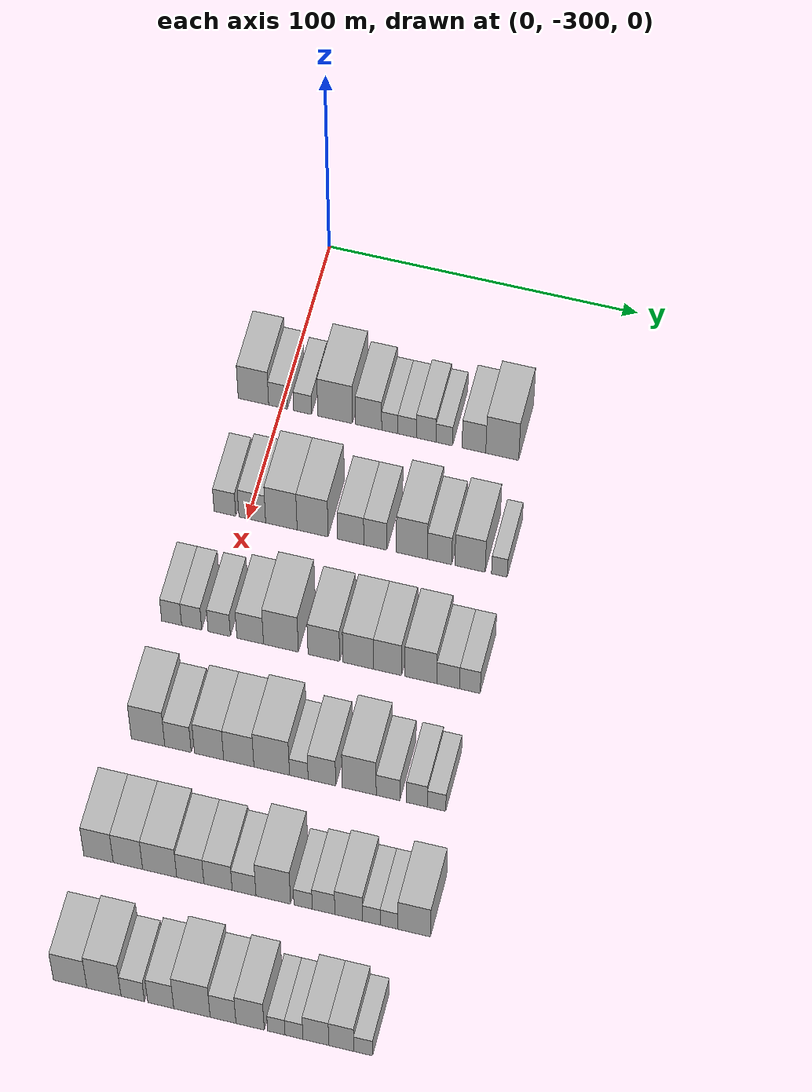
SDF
<sdf version="1.6">
 <world name="default">
  <model name="building_33">
   <static>1</static>
   <pose>50.0000 -309.0129 0 0.000000 0.000000 0.000000</pose>
   <link name="link">
    <pose>0 0 10.50 0 0 0</pose>
    <collision name="collision"><geometry><box><size>20.0000 9.7960 21.0000</size></box></geometry></collision>
    <visual name="visual">
     <cast_shadows>0</cast_shadows>
     <geometry><box><size>20.0000 9.7960 21.0000</size></box></geometry>
     <material>
      <script>
       <uri>model://HANNAS_wall/materials/scripts</uri>
       <uri>model://HANNAS_wall/materials/textures</uri>
       <name>vrc/HANNAS_wall</name>
      </script>
     </material>
    </visual>
   </link>
  </model>
  <model name="building_34">
   <static>1</static>
   <pose>50.0000 -301.0867 0 0.000000 0.000000 0.000000</pose>
   <link name="link">
    <pose>0 0 7.50 0 0 0</pose>
    <collision name="collision"><geometry><box><size>20.0000 6.0563 15.0000</size></box></geometry></collision>
    <visual name="visual">
     <cast_shadows>0</cast_shadows>
     <geometry><box><size>20.0000 6.0563 15.0000</size></box></geometry>
     <material>
      <script>
       <uri>model://HANNAS_wall/materials/scripts</uri>
       <uri>model://HANNAS_wall/materials/textures</uri>
       <name>vrc/HANNAS_wall</name>
      </script>
     </material>
    </visual>
   </link>
  </model>
  <model name="building_35">
   <static>1</static>
   <pose>50.0000 -293.1780 0 0.000000 0.000000 0.000000</pose>
   <link name="link">
    <pose>0 0 6.00 0 0 0</pose>
    <collision name="collision"><geometry><box><size>20.0000 5.7611 12.0000</size></box></geometry></collision>
    <visual name="visual">
     <cast_shadows>0</cast_shadows>
     <geometry><box><size>20.0000 5.7611 12.0000</size></box></geometry>
     <material>
      <script>
       <uri>model://HANNAS_wall/materials/scripts</uri>
       <uri>model://HANNAS_wall/materials/textures</uri>
       <name>vrc/HANNAS_wall</name>
      </script>
     </material>
    </visual>
   </link>
  </model>
  <model name="building_36">
   <static>1</static>
   <pose>50.0000 -282.7511 0 0.000000 0.000000 0.000000</pose>
   <link name="link">
    <pose>0 0 12.00 0 0 0</pose>
    <collision name="collision"><geometry><box><size>20.0000 11.0928 24.0000</size></box></geometry></collision>
    <visual name="visual">
     <cast_shadows>0</cast_shadows>
     <geometry><box><size>20.0000 11.0928 24.0000</size></box></geometry>
     <material>
      <script>
       <uri>model://HANNAS_wall/materials/scripts</uri>
       <uri>model://HANNAS_wall/materials/textures</uri>
       <name>vrc/HANNAS_wall</name>
      </script>
     </material>
    </visual>
   </link>
  </model>
  <model name="building_37">
   <static>1</static>
   <pose>50.0000 -272.0210 0 0.000000 0.000000 0.000000</pose>
   <link name="link">
    <pose>0 0 9.00 0 0 0</pose>
    <collision name="collision"><geometry><box><size>20.0000 8.3673 18.0000</size></box></geometry></collision>
    <visual name="visual">
     <cast_shadows>0</cast_shadows>
     <geometry><box><size>20.0000 8.3673 18.0000</size></box></geometry>
     <material>
      <script>
       <uri>model://HANNAS_wall/materials/scripts</uri>
       <uri>model://HANNAS_wall/materials/textures</uri>
       <name>vrc/HANNAS_wall</name>
      </script>
     </material>
    </visual>
   </link>
  </model>
  <model name="building_38">
   <static>1</static>
   <pose>50.0000 -265.2547 0 0.000000 0.000000 0.000000</pose>
   <link name="link">
    <pose>0 0 6.00 0 0 0</pose>
    <collision name="collision"><geometry><box><size>20.0000 5.1654 12.0000</size></box></geometry></collision>
    <visual name="visual">
     <cast_shadows>0</cast_shadows>
     <geometry><box><size>20.0000 5.1654 12.0000</size></box></geometry>
     <material>
      <script>
       <uri>model://HANNAS_wall/materials/scripts</uri>
       <uri>model://HANNAS_wall/materials/textures</uri>
       <name>vrc/HANNAS_wall</name>
      </script>
     </material>
    </visual>
   </link>
  </model>
  <model name="building_39">
   <static>1</static>
   <pose>50.0000 -259.7088 0 0.000000 0.000000 0.000000</pose>
   <link name="link">
    <pose>0 0 6.00 0 0 0</pose>
    <collision name="collision"><geometry><box><size>20.0000 5.9265 12.0000</size></box></geometry></collision>
    <visual name="visual">
     <cast_shadows>0</cast_shadows>
     <geometry><box><size>20.0000 5.9265 12.0000</size></box></geometry>
     <material>
      <script>
       <uri>model://HANNAS_wall/materials/scripts</uri>
       <uri>model://HANNAS_wall/materials/textures</uri>
       <name>vrc/HANNAS_wall</name>
      </script>
     </material>
    </visual>
   </link>
  </model>
  <model name="building_40">
   <static>1</static>
   <pose>50.0000 -253.6281 0 0.000000 0.000000 0.000000</pose>
   <link name="link">
    <pose>0 0 7.50 0 0 0</pose>
    <collision name="collision"><geometry><box><size>20.0000 6.2348 15.0000</size></box></geometry></collision>
    <visual name="visual">
     <cast_shadows>0</cast_shadows>
     <geometry><box><size>20.0000 6.2348 15.0000</size></box></geometry>
     <material>
      <script>
       <uri>model://HANNAS_wall/materials/scripts</uri>
       <uri>model://HANNAS_wall/materials/textures</uri>
       <name>vrc/HANNAS_wall</name>
      </script>
     </material>
    </visual>
   </link>
  </model>
  <model name="building_41">
   <static>1</static>
   <pose>50.0000 -247.8397 0 0.000000 0.000000 0.000000</pose>
   <link name="link">
    <pose>0 0 6.00 0 0 0</pose>
    <collision name="collision"><geometry><box><size>20.0000 5.3420 12.0000</size></box></geometry></collision>
    <visual name="visual">
     <cast_shadows>0</cast_shadows>
     <geometry><box><size>20.0000 5.3420 12.0000</size></box></geometry>
     <material>
      <script>
       <uri>model://HANNAS_wall/materials/scripts</uri>
       <uri>model://HANNAS_wall/materials/textures</uri>
       <name>vrc/HANNAS_wall</name>
      </script>
     </material>
    </visual>
   </link>
  </model>
  <model name="building_42">
   <static>1</static>
   <pose>50.0000 -238.3857 0 0.000000 0.000000 0.000000</pose>
   <link name="link">
    <pose>0 0 9.00 0 0 0</pose>
    <collision name="collision"><geometry><box><size>20.0000 7.5660 18.0000</size></box></geometry></collision>
    <visual name="visual">
     <cast_shadows>0</cast_shadows>
     <geometry><box><size>20.0000 7.5660 18.0000</size></box></geometry>
     <material>
      <script>
       <uri>model://HANNAS_wall/materials/scripts</uri>
       <uri>model://HANNAS_wall/materials/textures</uri>
       <name>vrc/HANNAS_wall</name>
      </script>
     </material>
    </visual>
   </link>
  </model>
  <model name="building_43">
   <static>1</static>
   <pose>50.0000 -229.3706 0 0.000000 0.000000 0.000000</pose>
   <link name="link">
    <pose>0 0 12.00 0 0 0</pose>
    <collision name="collision"><geometry><box><size>20.0000 10.4642 24.0000</size></box></geometry></collision>
    <visual name="visual">
     <cast_shadows>0</cast_shadows>
     <geometry><box><size>20.0000 10.4642 24.0000</size></box></geometry>
     <material>
      <script>
       <uri>model://HANNAS_wall/materials/scripts</uri>
       <uri>model://HANNAS_wall/materials/textures</uri>
       <name>vrc/HANNAS_wall</name>
      </script>
     </material>
    </visual>
   </link>
  </model>
  <model name="building_166">
   <static>1</static>
   <pose>90.0000 -307.4563 0 0.000000 0.000000 0.000000</pose>
   <link name="link">
    <pose>0 0 7.50 0 0 0</pose>
    <collision name="collision"><geometry><box><size>20.0000 6.8981 15.0000</size></box></geometry></collision>
    <visual name="visual">
     <cast_shadows>0</cast_shadows>
     <geometry><box><size>20.0000 6.8981 15.0000</size></box></geometry>
     <material>
      <script>
       <uri>model://HANNAS_wall/materials/scripts</uri>
       <uri>model://HANNAS_wall/materials/textures</uri>
       <name>vrc/HANNAS_wall</name>
      </script>
     </material>
    </visual>
   </link>
  </model>
  <model name="building_167">
   <static>1</static>
   <pose>90.0000 -298.7523 0 0.000000 0.000000 0.000000</pose>
   <link name="link">
    <pose>0 0 9.00 0 0 0</pose>
    <collision name="collision"><geometry><box><size>20.0000 8.5100 18.0000</size></box></geometry></collision>
    <visual name="visual">
     <cast_shadows>0</cast_shadows>
     <geometry><box><size>20.0000 8.5100 18.0000</size></box></geometry>
     <material>
      <script>
       <uri>model://HANNAS_wall/materials/scripts</uri>
       <uri>model://HANNAS_wall/materials/textures</uri>
       <name>vrc/HANNAS_wall</name>
      </script>
     </material>
    </visual>
   </link>
  </model>
  <model name="building_168">
   <static>1</static>
   <pose>90.0000 -289.4993 0 0.000000 0.000000 0.000000</pose>
   <link name="link">
    <pose>0 0 12.00 0 0 0</pose>
    <collision name="collision"><geometry><box><size>20.0000 9.9960 24.0000</size></box></geometry></collision>
    <visual name="visual">
     <cast_shadows>0</cast_shadows>
     <geometry><box><size>20.0000 9.9960 24.0000</size></box></geometry>
     <material>
      <script>
       <uri>model://HANNAS_wall/materials/scripts</uri>
       <uri>model://HANNAS_wall/materials/textures</uri>
       <name>vrc/HANNAS_wall</name>
      </script>
     </material>
    </visual>
   </link>
  </model>
  <model name="building_169">
   <static>1</static>
   <pose>90.0000 -279.5873 0 0.000000 0.000000 0.000000</pose>
   <link name="link">
    <pose>0 0 12.00 0 0 0</pose>
    <collision name="collision"><geometry><box><size>20.0000 9.8280 24.0000</size></box></geometry></collision>
    <visual name="visual">
     <cast_shadows>0</cast_shadows>
     <geometry><box><size>20.0000 9.8280 24.0000</size></box></geometry>
     <material>
      <script>
       <uri>model://HANNAS_wall/materials/scripts</uri>
       <uri>model://HANNAS_wall/materials/textures</uri>
       <name>vrc/HANNAS_wall</name>
      </script>
     </material>
    </visual>
   </link>
  </model>
  <model name="building_170">
   <static>1</static>
   <pose>90.0000 -267.5378 0 0.000000 0.000000 0.000000</pose>
   <link name="link">
    <pose>0 0 9.00 0 0 0</pose>
    <collision name="collision"><geometry><box><size>20.0000 8.2711 18.0000</size></box></geometry></collision>
    <visual name="visual">
     <cast_shadows>0</cast_shadows>
     <geometry><box><size>20.0000 8.2711 18.0000</size></box></geometry>
     <material>
      <script>
       <uri>model://HANNAS_wall/materials/scripts</uri>
       <uri>model://HANNAS_wall/materials/textures</uri>
       <name>vrc/HANNAS_wall</name>
      </script>
     </material>
    </visual>
   </link>
  </model>
  <model name="building_171">
   <static>1</static>
   <pose>90.0000 -259.7451 0 0.000000 0.000000 0.000000</pose>
   <link name="link">
    <pose>0 0 9.00 0 0 0</pose>
    <collision name="collision"><geometry><box><size>20.0000 7.3143 18.0000</size></box></geometry></collision>
    <visual name="visual">
     <cast_shadows>0</cast_shadows>
     <geometry><box><size>20.0000 7.3143 18.0000</size></box></geometry>
     <material>
      <script>
       <uri>model://HANNAS_wall/materials/scripts</uri>
       <uri>model://HANNAS_wall/materials/textures</uri>
       <name>vrc/HANNAS_wall</name>
      </script>
     </material>
    </visual>
   </link>
  </model>
  <model name="building_172">
   <static>1</static>
   <pose>90.0000 -248.2049 0 0.000000 0.000000 0.000000</pose>
   <link name="link">
    <pose>0 0 12.00 0 0 0</pose>
    <collision name="collision"><geometry><box><size>20.0000 9.7661 24.0000</size></box></geometry></collision>
    <visual name="visual">
     <cast_shadows>0</cast_shadows>
     <geometry><box><size>20.0000 9.7661 24.0000</size></box></geometry>
     <material>
      <script>
       <uri>model://HANNAS_wall/materials/scripts</uri>
       <uri>model://HANNAS_wall/materials/textures</uri>
       <name>vrc/HANNAS_wall</name>
      </script>
     </material>
    </visual>
   </link>
  </model>
  <model name="building_173">
   <static>1</static>
   <pose>90.0000 -239.5015 0 0.000000 0.000000 0.000000</pose>
   <link name="link">
    <pose>0 0 9.00 0 0 0</pose>
    <collision name="collision"><geometry><box><size>20.0000 7.6409 18.0000</size></box></geometry></collision>
    <visual name="visual">
     <cast_shadows>0</cast_shadows>
     <geometry><box><size>20.0000 7.6409 18.0000</size></box></geometry>
     <material>
      <script>
       <uri>model://HANNAS_wall/materials/scripts</uri>
       <uri>model://HANNAS_wall/materials/textures</uri>
       <name>vrc/HANNAS_wall</name>
      </script>
     </material>
    </visual>
   </link>
  </model>
  <model name="building_174">
   <static>1</static>
   <pose>90.0000 -229.9173 0 0.000000 0.000000 0.000000</pose>
   <link name="link">
    <pose>0 0 10.50 0 0 0</pose>
    <collision name="collision"><geometry><box><size>20.0000 9.5275 21.0000</size></box></geometry></collision>
    <visual name="visual">
     <cast_shadows>0</cast_shadows>
     <geometry><box><size>20.0000 9.5275 21.0000</size></box></geometry>
     <material>
      <script>
       <uri>model://HANNAS_wall/materials/scripts</uri>
       <uri>model://HANNAS_wall/materials/textures</uri>
       <name>vrc/HANNAS_wall</name>
      </script>
     </material>
    </visual>
   </link>
  </model>
  <model name="building_175">
   <static>1</static>
   <pose>90.0000 -220.6853 0 0.000000 0.000000 0.000000</pose>
   <link name="link">
    <pose>0 0 6.00 0 0 0</pose>
    <collision name="collision"><geometry><box><size>20.0000 4.9364 12.0000</size></box></geometry></collision>
    <visual name="visual">
     <cast_shadows>0</cast_shadows>
     <geometry><box><size>20.0000 4.9364 12.0000</size></box></geometry>
     <material>
      <script>
       <uri>model://HANNAS_wall/materials/scripts</uri>
       <uri>model://HANNAS_wall/materials/textures</uri>
       <name>vrc/HANNAS_wall</name>
      </script>
     </material>
    </visual>
   </link>
  </model>
  <model name="building_303">
   <static>1</static>
   <pose>130.0000 -313.4658 0 0.000000 0.000000 0.000000</pose>
   <link name="link">
    <pose>0 0 7.50 0 0 0</pose>
    <collision name="collision"><geometry><box><size>20.0000 6.2814 15.0000</size></box></geometry></collision>
    <visual name="visual">
     <cast_shadows>0</cast_shadows>
     <geometry><box><size>20.0000 6.2814 15.0000</size></box></geometry>
     <material>
      <script>
       <uri>model://HANNAS_wall/materials/scripts</uri>
       <uri>model://HANNAS_wall/materials/textures</uri>
       <name>vrc/HANNAS_wall</name>
      </script>
     </material>
    </visual>
   </link>
  </model>
  <model name="building_304">
   <static>1</static>
   <pose>130.0000 -307.1606 0 0.000000 0.000000 0.000000</pose>
   <link name="link">
    <pose>0 0 7.50 0 0 0</pose>
    <collision name="collision"><geometry><box><size>20.0000 6.3290 15.0000</size></box></geometry></collision>
    <visual name="visual">
     <cast_shadows>0</cast_shadows>
     <geometry><box><size>20.0000 6.3290 15.0000</size></box></geometry>
     <material>
      <script>
       <uri>model://HANNAS_wall/materials/scripts</uri>
       <uri>model://HANNAS_wall/materials/textures</uri>
       <name>vrc/HANNAS_wall</name>
      </script>
     </material>
    </visual>
   </link>
  </model>
  <model name="building_305">
   <static>1</static>
   <pose>130.0000 -298.4870 0 0.000000 0.000000 0.000000</pose>
   <link name="link">
    <pose>0 0 7.50 0 0 0</pose>
    <collision name="collision"><geometry><box><size>20.0000 7.0181 15.0000</size></box></geometry></collision>
    <visual name="visual">
     <cast_shadows>0</cast_shadows>
     <geometry><box><size>20.0000 7.0181 15.0000</size></box></geometry>
     <material>
      <script>
       <uri>model://HANNAS_wall/materials/scripts</uri>
       <uri>model://HANNAS_wall/materials/textures</uri>
       <name>vrc/HANNAS_wall</name>
      </script>
     </material>
    </visual>
   </link>
  </model>
  <model name="building_306">
   <static>1</static>
   <pose>130.0000 -288.7912 0 0.000000 0.000000 0.000000</pose>
   <link name="link">
    <pose>0 0 9.00 0 0 0</pose>
    <collision name="collision"><geometry><box><size>20.0000 8.3737 18.0000</size></box></geometry></collision>
    <visual name="visual">
     <cast_shadows>0</cast_shadows>
     <geometry><box><size>20.0000 8.3737 18.0000</size></box></geometry>
     <material>
      <script>
       <uri>model://HANNAS_wall/materials/scripts</uri>
       <uri>model://HANNAS_wall/materials/textures</uri>
       <name>vrc/HANNAS_wall</name>
      </script>
     </material>
    </visual>
   </link>
  </model>
  <model name="building_307">
   <static>1</static>
   <pose>130.0000 -279.1312 0 0.000000 0.000000 0.000000</pose>
   <link name="link">
    <pose>0 0 12.00 0 0 0</pose>
    <collision name="collision"><geometry><box><size>20.0000 10.9462 24.0000</size></box></geometry></collision>
    <visual name="visual">
     <cast_shadows>0</cast_shadows>
     <geometry><box><size>20.0000 10.9462 24.0000</size></box></geometry>
     <material>
      <script>
       <uri>model://HANNAS_wall/materials/scripts</uri>
       <uri>model://HANNAS_wall/materials/textures</uri>
       <name>vrc/HANNAS_wall</name>
      </script>
     </material>
    </visual>
   </link>
  </model>
  <model name="building_308">
   <static>1</static>
   <pose>130.0000 -265.7043 0 0.000000 0.000000 0.000000</pose>
   <link name="link">
    <pose>0 0 10.50 0 0 0</pose>
    <collision name="collision"><geometry><box><size>20.0000 9.9078 21.0000</size></box></geometry></collision>
    <visual name="visual">
     <cast_shadows>0</cast_shadows>
     <geometry><box><size>20.0000 9.9078 21.0000</size></box></geometry>
     <material>
      <script>
       <uri>model://HANNAS_wall/materials/scripts</uri>
       <uri>model://HANNAS_wall/materials/textures</uri>
       <name>vrc/HANNAS_wall</name>
      </script>
     </material>
    </visual>
   </link>
  </model>
  <model name="building_309">
   <static>1</static>
   <pose>130.0000 -254.9698 0 0.000000 0.000000 0.000000</pose>
   <link name="link">
    <pose>0 0 10.50 0 0 0</pose>
    <collision name="collision"><geometry><box><size>20.0000 9.5611 21.0000</size></box></geometry></collision>
    <visual name="visual">
     <cast_shadows>0</cast_shadows>
     <geometry><box><size>20.0000 9.5611 21.0000</size></box></geometry>
     <material>
      <script>
       <uri>model://HANNAS_wall/materials/scripts</uri>
       <uri>model://HANNAS_wall/materials/textures</uri>
       <name>vrc/HANNAS_wall</name>
      </script>
     </material>
    </visual>
   </link>
  </model>
  <model name="building_310">
   <static>1</static>
   <pose>130.0000 -245.8328 0 0.000000 0.000000 0.000000</pose>
   <link name="link">
    <pose>0 0 10.50 0 0 0</pose>
    <collision name="collision"><geometry><box><size>20.0000 8.7129 21.0000</size></box></geometry></collision>
    <visual name="visual">
     <cast_shadows>0</cast_shadows>
     <geometry><box><size>20.0000 8.7129 21.0000</size></box></geometry>
     <material>
      <script>
       <uri>model://HANNAS_wall/materials/scripts</uri>
       <uri>model://HANNAS_wall/materials/textures</uri>
       <name>vrc/HANNAS_wall</name>
      </script>
     </material>
    </visual>
   </link>
  </model>
  <model name="building_311">
   <static>1</static>
   <pose>130.0000 -235.5105 0 0.000000 0.000000 0.000000</pose>
   <link name="link">
    <pose>0 0 10.50 0 0 0</pose>
    <collision name="collision"><geometry><box><size>20.0000 9.9317 21.0000</size></box></geometry></collision>
    <visual name="visual">
     <cast_shadows>0</cast_shadows>
     <geometry><box><size>20.0000 9.9317 21.0000</size></box></geometry>
     <material>
      <script>
       <uri>model://HANNAS_wall/materials/scripts</uri>
       <uri>model://HANNAS_wall/materials/textures</uri>
       <name>vrc/HANNAS_wall</name>
      </script>
     </material>
    </visual>
   </link>
  </model>
  <model name="building_312">
   <static>1</static>
   <pose>130.0000 -227.0119 0 0.000000 0.000000 0.000000</pose>
   <link name="link">
    <pose>0 0 7.50 0 0 0</pose>
    <collision name="collision"><geometry><box><size>20.0000 7.0656 15.0000</size></box></geometry></collision>
    <visual name="visual">
     <cast_shadows>0</cast_shadows>
     <geometry><box><size>20.0000 7.0656 15.0000</size></box></geometry>
     <material>
      <script>
       <uri>model://HANNAS_wall/materials/scripts</uri>
       <uri>model://HANNAS_wall/materials/textures</uri>
       <name>vrc/HANNAS_wall</name>
      </script>
     </material>
    </visual>
   </link>
  </model>
  <model name="building_313">
   <static>1</static>
   <pose>130.0000 -220.2632 0 0.000000 0.000000 0.000000</pose>
   <link name="link">
    <pose>0 0 7.50 0 0 0</pose>
    <collision name="collision"><geometry><box><size>20.0000 6.4317 15.0000</size></box></geometry></collision>
    <visual name="visual">
     <cast_shadows>0</cast_shadows>
     <geometry><box><size>20.0000 6.4317 15.0000</size></box></geometry>
     <material>
      <script>
       <uri>model://HANNAS_wall/materials/scripts</uri>
       <uri>model://HANNAS_wall/materials/textures</uri>
       <name>vrc/HANNAS_wall</name>
      </script>
     </material>
    </visual>
   </link>
  </model>
  <model name="building_440">
   <static>1</static>
   <pose>170.0000 -309.8108 0 0.000000 0.000000 0.000000</pose>
   <link name="link">
    <pose>0 0 12.00 0 0 0</pose>
    <collision name="collision"><geometry><box><size>20.0000 10.4137 24.0000</size></box></geometry></collision>
    <visual name="visual">
     <cast_shadows>0</cast_shadows>
     <geometry><box><size>20.0000 10.4137 24.0000</size></box></geometry>
     <material>
      <script>
       <uri>model://HANNAS_wall/materials/scripts</uri>
       <uri>model://HANNAS_wall/materials/textures</uri>
       <name>vrc/HANNAS_wall</name>
      </script>
     </material>
    </visual>
   </link>
  </model>
  <model name="building_441">
   <static>1</static>
   <pose>170.0000 -300.5060 0 0.000000 0.000000 0.000000</pose>
   <link name="link">
    <pose>0 0 9.00 0 0 0</pose>
    <collision name="collision"><geometry><box><size>20.0000 8.1960 18.0000</size></box></geometry></collision>
    <visual name="visual">
     <cast_shadows>0</cast_shadows>
     <geometry><box><size>20.0000 8.1960 18.0000</size></box></geometry>
     <material>
      <script>
       <uri>model://HANNAS_wall/materials/scripts</uri>
       <uri>model://HANNAS_wall/materials/textures</uri>
       <name>vrc/HANNAS_wall</name>
      </script>
     </material>
    </visual>
   </link>
  </model>
  <model name="building_442">
   <static>1</static>
   <pose>170.0000 -290.8806 0 0.000000 0.000000 0.000000</pose>
   <link name="link">
    <pose>0 0 10.50 0 0 0</pose>
    <collision name="collision"><geometry><box><size>20.0000 9.0547 21.0000</size></box></geometry></collision>
    <visual name="visual">
     <cast_shadows>0</cast_shadows>
     <geometry><box><size>20.0000 9.0547 21.0000</size></box></geometry>
     <material>
      <script>
       <uri>model://HANNAS_wall/materials/scripts</uri>
       <uri>model://HANNAS_wall/materials/textures</uri>
       <name>vrc/HANNAS_wall</name>
      </script>
     </material>
    </visual>
   </link>
  </model>
  <model name="building_443">
   <static>1</static>
   <pose>170.0000 -281.6627 0 0.000000 0.000000 0.000000</pose>
   <link name="link">
    <pose>0 0 10.50 0 0 0</pose>
    <collision name="collision"><geometry><box><size>20.0000 9.3812 21.0000</size></box></geometry></collision>
    <visual name="visual">
     <cast_shadows>0</cast_shadows>
     <geometry><box><size>20.0000 9.3812 21.0000</size></box></geometry>
     <material>
      <script>
       <uri>model://HANNAS_wall/materials/scripts</uri>
       <uri>model://HANNAS_wall/materials/textures</uri>
       <name>vrc/HANNAS_wall</name>
      </script>
     </material>
    </visual>
   </link>
  </model>
  <model name="building_444">
   <static>1</static>
   <pose>170.0000 -271.4679 0 0.000000 0.000000 0.000000</pose>
   <link name="link">
    <pose>0 0 12.00 0 0 0</pose>
    <collision name="collision"><geometry><box><size>20.0000 11.0085 24.0000</size></box></geometry></collision>
    <visual name="visual">
     <cast_shadows>0</cast_shadows>
     <geometry><box><size>20.0000 11.0085 24.0000</size></box></geometry>
     <material>
      <script>
       <uri>model://HANNAS_wall/materials/scripts</uri>
       <uri>model://HANNAS_wall/materials/textures</uri>
       <name>vrc/HANNAS_wall</name>
      </script>
     </material>
    </visual>
   </link>
  </model>
  <model name="building_445">
   <static>1</static>
   <pose>170.0000 -263.1023 0 0.000000 0.000000 0.000000</pose>
   <link name="link">
    <pose>0 0 6.00 0 0 0</pose>
    <collision name="collision"><geometry><box><size>20.0000 5.7227 12.0000</size></box></geometry></collision>
    <visual name="visual">
     <cast_shadows>0</cast_shadows>
     <geometry><box><size>20.0000 5.7227 12.0000</size></box></geometry>
     <material>
      <script>
       <uri>model://HANNAS_wall/materials/scripts</uri>
       <uri>model://HANNAS_wall/materials/textures</uri>
       <name>vrc/HANNAS_wall</name>
      </script>
     </material>
    </visual>
   </link>
  </model>
  <model name="building_446">
   <static>1</static>
   <pose>170.0000 -255.9765 0 0.000000 0.000000 0.000000</pose>
   <link name="link">
    <pose>0 0 9.00 0 0 0</pose>
    <collision name="collision"><geometry><box><size>20.0000 8.5289 18.0000</size></box></geometry></collision>
    <visual name="visual">
     <cast_shadows>0</cast_shadows>
     <geometry><box><size>20.0000 8.5289 18.0000</size></box></geometry>
     <material>
      <script>
       <uri>model://HANNAS_wall/materials/scripts</uri>
       <uri>model://HANNAS_wall/materials/textures</uri>
       <name>vrc/HANNAS_wall</name>
      </script>
     </material>
    </visual>
   </link>
  </model>
  <model name="building_447">
   <static>1</static>
   <pose>170.0000 -244.4916 0 0.000000 0.000000 0.000000</pose>
   <link name="link">
    <pose>0 0 12.00 0 0 0</pose>
    <collision name="collision"><geometry><box><size>20.0000 10.4408 24.0000</size></box></geometry></collision>
    <visual name="visual">
     <cast_shadows>0</cast_shadows>
     <geometry><box><size>20.0000 10.4408 24.0000</size></box></geometry>
     <material>
      <script>
       <uri>model://HANNAS_wall/materials/scripts</uri>
       <uri>model://HANNAS_wall/materials/textures</uri>
       <name>vrc/HANNAS_wall</name>
      </script>
     </material>
    </visual>
   </link>
  </model>
  <model name="building_448">
   <static>1</static>
   <pose>170.0000 -235.6298 0 0.000000 0.000000 0.000000</pose>
   <link name="link">
    <pose>0 0 7.50 0 0 0</pose>
    <collision name="collision"><geometry><box><size>20.0000 7.2827 15.0000</size></box></geometry></collision>
    <visual name="visual">
     <cast_shadows>0</cast_shadows>
     <geometry><box><size>20.0000 7.2827 15.0000</size></box></geometry>
     <material>
      <script>
       <uri>model://HANNAS_wall/materials/scripts</uri>
       <uri>model://HANNAS_wall/materials/textures</uri>
       <name>vrc/HANNAS_wall</name>
      </script>
     </material>
    </visual>
   </link>
  </model>
  <model name="building_449">
   <static>1</static>
   <pose>170.0000 -226.7990 0 0.000000 0.000000 0.000000</pose>
   <link name="link">
    <pose>0 0 7.50 0 0 0</pose>
    <collision name="collision"><geometry><box><size>20.0000 6.3789 15.0000</size></box></geometry></collision>
    <visual name="visual">
     <cast_shadows>0</cast_shadows>
     <geometry><box><size>20.0000 6.3789 15.0000</size></box></geometry>
     <material>
      <script>
       <uri>model://HANNAS_wall/materials/scripts</uri>
       <uri>model://HANNAS_wall/materials/textures</uri>
       <name>vrc/HANNAS_wall</name>
      </script>
     </material>
    </visual>
   </link>
  </model>
  <model name="building_450">
   <static>1</static>
   <pose>170.0000 -220.7639 0 0.000000 0.000000 0.000000</pose>
   <link name="link">
    <pose>0 0 6.00 0 0 0</pose>
    <collision name="collision"><geometry><box><size>20.0000 5.6913 12.0000</size></box></geometry></collision>
    <visual name="visual">
     <cast_shadows>0</cast_shadows>
     <geometry><box><size>20.0000 5.6913 12.0000</size></box></geometry>
     <material>
      <script>
       <uri>model://HANNAS_wall/materials/scripts</uri>
       <uri>model://HANNAS_wall/materials/textures</uri>
       <name>vrc/HANNAS_wall</name>
      </script>
     </material>
    </visual>
   </link>
  </model>
  <model name="building_576">
   <static>1</static>
   <pose>210.0000 -313.9531 0 0.000000 0.000000 0.000000</pose>
   <link name="link">
    <pose>0 0 10.50 0 0 0</pose>
    <collision name="collision"><geometry><box><size>20.0000 9.0266 21.0000</size></box></geometry></collision>
    <visual name="visual">
     <cast_shadows>0</cast_shadows>
     <geometry><box><size>20.0000 9.0266 21.0000</size></box></geometry>
     <material>
      <script>
       <uri>model://HANNAS_wall/materials/scripts</uri>
       <uri>model://HANNAS_wall/materials/textures</uri>
       <name>vrc/HANNAS_wall</name>
      </script>
     </material>
    </visual>
   </link>
  </model>
  <model name="building_577">
   <static>1</static>
   <pose>210.0000 -304.9238 0 0.000000 0.000000 0.000000</pose>
   <link name="link">
    <pose>0 0 10.50 0 0 0</pose>
    <collision name="collision"><geometry><box><size>20.0000 9.0320 21.0000</size></box></geometry></collision>
    <visual name="visual">
     <cast_shadows>0</cast_shadows>
     <geometry><box><size>20.0000 9.0320 21.0000</size></box></geometry>
     <material>
      <script>
       <uri>model://HANNAS_wall/materials/scripts</uri>
       <uri>model://HANNAS_wall/materials/textures</uri>
       <name>vrc/HANNAS_wall</name>
      </script>
     </material>
    </visual>
   </link>
  </model>
  <model name="building_578">
   <static>1</static>
   <pose>210.0000 -295.1816 0 0.000000 0.000000 0.000000</pose>
   <link name="link">
    <pose>0 0 10.50 0 0 0</pose>
    <collision name="collision"><geometry><box><size>20.0000 10.4524 21.0000</size></box></geometry></collision>
    <visual name="visual">
     <cast_shadows>0</cast_shadows>
     <geometry><box><size>20.0000 10.4524 21.0000</size></box></geometry>
     <material>
      <script>
       <uri>model://HANNAS_wall/materials/scripts</uri>
       <uri>model://HANNAS_wall/materials/textures</uri>
       <name>vrc/HANNAS_wall</name>
      </script>
     </material>
    </visual>
   </link>
  </model>
  <model name="building_579">
   <static>1</static>
   <pose>210.0000 -285.7955 0 0.000000 0.000000 0.000000</pose>
   <link name="link">
    <pose>0 0 9.00 0 0 0</pose>
    <collision name="collision"><geometry><box><size>20.0000 8.3197 18.0000</size></box></geometry></collision>
    <visual name="visual">
     <cast_shadows>0</cast_shadows>
     <geometry><box><size>20.0000 8.3197 18.0000</size></box></geometry>
     <material>
      <script>
       <uri>model://HANNAS_wall/materials/scripts</uri>
       <uri>model://HANNAS_wall/materials/textures</uri>
       <name>vrc/HANNAS_wall</name>
      </script>
     </material>
    </visual>
   </link>
  </model>
  <model name="building_580">
   <static>1</static>
   <pose>210.0000 -277.3156 0 0.000000 0.000000 0.000000</pose>
   <link name="link">
    <pose>0 0 9.00 0 0 0</pose>
    <collision name="collision"><geometry><box><size>20.0000 8.6401 18.0000</size></box></geometry></collision>
    <visual name="visual">
     <cast_shadows>0</cast_shadows>
     <geometry><box><size>20.0000 8.6401 18.0000</size></box></geometry>
     <material>
      <script>
       <uri>model://HANNAS_wall/materials/scripts</uri>
       <uri>model://HANNAS_wall/materials/textures</uri>
       <name>vrc/HANNAS_wall</name>
      </script>
     </material>
    </visual>
   </link>
  </model>
  <model name="building_581">
   <static>1</static>
   <pose>210.0000 -269.3543 0 0.000000 0.000000 0.000000</pose>
   <link name="link">
    <pose>0 0 7.50 0 0 0</pose>
    <collision name="collision"><geometry><box><size>20.0000 7.2826 15.0000</size></box></geometry></collision>
    <visual name="visual">
     <cast_shadows>0</cast_shadows>
     <geometry><box><size>20.0000 7.2826 15.0000</size></box></geometry>
     <material>
      <script>
       <uri>model://HANNAS_wall/materials/scripts</uri>
       <uri>model://HANNAS_wall/materials/textures</uri>
       <name>vrc/HANNAS_wall</name>
      </script>
     </material>
    </visual>
   </link>
  </model>
  <model name="building_582">
   <static>1</static>
   <pose>210.0000 -260.4366 0 0.000000 0.000000 0.000000</pose>
   <link name="link">
    <pose>0 0 12.00 0 0 0</pose>
    <collision name="collision"><geometry><box><size>20.0000 10.5528 24.0000</size></box></geometry></collision>
    <visual name="visual">
     <cast_shadows>0</cast_shadows>
     <geometry><box><size>20.0000 10.5528 24.0000</size></box></geometry>
     <material>
      <script>
       <uri>model://HANNAS_wall/materials/scripts</uri>
       <uri>model://HANNAS_wall/materials/textures</uri>
       <name>vrc/HANNAS_wall</name>
      </script>
     </material>
    </visual>
   </link>
  </model>
  <model name="building_583">
   <static>1</static>
   <pose>210.0000 -251.3647 0 0.000000 0.000000 0.000000</pose>
   <link name="link">
    <pose>0 0 6.00 0 0 0</pose>
    <collision name="collision"><geometry><box><size>20.0000 5.5911 12.0000</size></box></geometry></collision>
    <visual name="visual">
     <cast_shadows>0</cast_shadows>
     <geometry><box><size>20.0000 5.5911 12.0000</size></box></geometry>
     <material>
      <script>
       <uri>model://HANNAS_wall/materials/scripts</uri>
       <uri>model://HANNAS_wall/materials/textures</uri>
       <name>vrc/HANNAS_wall</name>
      </script>
     </material>
    </visual>
   </link>
  </model>
  <model name="building_584">
   <static>1</static>
   <pose>210.0000 -245.1346 0 0.000000 0.000000 0.000000</pose>
   <link name="link">
    <pose>0 0 7.50 0 0 0</pose>
    <collision name="collision"><geometry><box><size>20.0000 6.8690 15.0000</size></box></geometry></collision>
    <visual name="visual">
     <cast_shadows>0</cast_shadows>
     <geometry><box><size>20.0000 6.8690 15.0000</size></box></geometry>
     <material>
      <script>
       <uri>model://HANNAS_wall/materials/scripts</uri>
       <uri>model://HANNAS_wall/materials/textures</uri>
       <name>vrc/HANNAS_wall</name>
      </script>
     </material>
    </visual>
   </link>
  </model>
  <model name="building_585">
   <static>1</static>
   <pose>210.0000 -237.4994 0 0.000000 0.000000 0.000000</pose>
   <link name="link">
    <pose>0 0 9.00 0 0 0</pose>
    <collision name="collision"><geometry><box><size>20.0000 8.4015 18.0000</size></box></geometry></collision>
    <visual name="visual">
     <cast_shadows>0</cast_shadows>
     <geometry><box><size>20.0000 8.4015 18.0000</size></box></geometry>
     <material>
      <script>
       <uri>model://HANNAS_wall/materials/scripts</uri>
       <uri>model://HANNAS_wall/materials/textures</uri>
       <name>vrc/HANNAS_wall</name>
      </script>
     </material>
    </visual>
   </link>
  </model>
  <model name="building_586">
   <static>1</static>
   <pose>210.0000 -230.6270 0 0.000000 0.000000 0.000000</pose>
   <link name="link">
    <pose>0 0 6.00 0 0 0</pose>
    <collision name="collision"><geometry><box><size>20.0000 5.3433 12.0000</size></box></geometry></collision>
    <visual name="visual">
     <cast_shadows>0</cast_shadows>
     <geometry><box><size>20.0000 5.3433 12.0000</size></box></geometry>
     <material>
      <script>
       <uri>model://HANNAS_wall/materials/scripts</uri>
       <uri>model://HANNAS_wall/materials/textures</uri>
       <name>vrc/HANNAS_wall</name>
      </script>
     </material>
    </visual>
   </link>
  </model>
  <model name="building_587">
   <static>1</static>
   <pose>210.0000 -225.2738 0 0.000000 0.000000 0.000000</pose>
   <link name="link">
    <pose>0 0 6.00 0 0 0</pose>
    <collision name="collision"><geometry><box><size>20.0000 5.3632 12.0000</size></box></geometry></collision>
    <visual name="visual">
     <cast_shadows>0</cast_shadows>
     <geometry><box><size>20.0000 5.3632 12.0000</size></box></geometry>
     <material>
      <script>
       <uri>model://HANNAS_wall/materials/scripts</uri>
       <uri>model://HANNAS_wall/materials/textures</uri>
       <name>vrc/HANNAS_wall</name>
      </script>
     </material>
    </visual>
   </link>
  </model>
  <model name="building_588">
   <static>1</static>
   <pose>210.0000 -217.6478 0 0.000000 0.000000 0.000000</pose>
   <link name="link">
    <pose>0 0 10.50 0 0 0</pose>
    <collision name="collision"><geometry><box><size>20.0000 9.8887 21.0000</size></box></geometry></collision>
    <visual name="visual">
     <cast_shadows>0</cast_shadows>
     <geometry><box><size>20.0000 9.8887 21.0000</size></box></geometry>
     <material>
      <script>
       <uri>model://HANNAS_wall/materials/scripts</uri>
       <uri>model://HANNAS_wall/materials/textures</uri>
       <name>vrc/HANNAS_wall</name>
      </script>
     </material>
    </visual>
   </link>
  </model>
  <model name="building_709">
   <static>1</static>
   <pose>250.0000 -311.2815 0 0.000000 0.000000 0.000000</pose>
   <link name="link">
    <pose>0 0 10.50 0 0 0</pose>
    <collision name="collision"><geometry><box><size>20.0000 10.1731 21.0000</size></box></geometry></collision>
    <visual name="visual">
     <cast_shadows>0</cast_shadows>
     <geometry><box><size>20.0000 10.1731 21.0000</size></box></geometry>
     <material>
      <script>
       <uri>model://HANNAS_wall/materials/scripts</uri>
       <uri>model://HANNAS_wall/materials/textures</uri>
       <name>vrc/HANNAS_wall</name>
      </script>
     </material>
    </visual>
   </link>
  </model>
  <model name="building_710">
   <static>1</static>
   <pose>250.0000 -301.0216 0 0.000000 0.000000 0.000000</pose>
   <link name="link">
    <pose>0 0 12.00 0 0 0</pose>
    <collision name="collision"><geometry><box><size>20.0000 10.3468 24.0000</size></box></geometry></collision>
    <visual name="visual">
     <cast_shadows>0</cast_shadows>
     <geometry><box><size>20.0000 10.3468 24.0000</size></box></geometry>
     <material>
      <script>
       <uri>model://HANNAS_wall/materials/scripts</uri>
       <uri>model://HANNAS_wall/materials/textures</uri>
       <name>vrc/HANNAS_wall</name>
      </script>
     </material>
    </visual>
   </link>
  </model>
  <model name="building_711">
   <static>1</static>
   <pose>250.0000 -292.3004 0 0.000000 0.000000 0.000000</pose>
   <link name="link">
    <pose>0 0 7.50 0 0 0</pose>
    <collision name="collision"><geometry><box><size>20.0000 7.0955 15.0000</size></box></geometry></collision>
    <visual name="visual">
     <cast_shadows>0</cast_shadows>
     <geometry><box><size>20.0000 7.0955 15.0000</size></box></geometry>
     <material>
      <script>
       <uri>model://HANNAS_wall/materials/scripts</uri>
       <uri>model://HANNAS_wall/materials/textures</uri>
       <name>vrc/HANNAS_wall</name>
      </script>
     </material>
    </visual>
   </link>
  </model>
  <model name="building_712">
   <static>1</static>
   <pose>250.0000 -283.8235 0 0.000000 0.000000 0.000000</pose>
   <link name="link">
    <pose>0 0 9.00 0 0 0</pose>
    <collision name="collision"><geometry><box><size>20.0000 7.8583 18.0000</size></box></geometry></collision>
    <visual name="visual">
     <cast_shadows>0</cast_shadows>
     <geometry><box><size>20.0000 7.8583 18.0000</size></box></geometry>
     <material>
      <script>
       <uri>model://HANNAS_wall/materials/scripts</uri>
       <uri>model://HANNAS_wall/materials/textures</uri>
       <name>vrc/HANNAS_wall</name>
      </script>
     </material>
    </visual>
   </link>
  </model>
  <model name="building_713">
   <static>1</static>
   <pose>250.0000 -274.4101 0 0.000000 0.000000 0.000000</pose>
   <link name="link">
    <pose>0 0 12.00 0 0 0</pose>
    <collision name="collision"><geometry><box><size>20.0000 10.9685 24.0000</size></box></geometry></collision>
    <visual name="visual">
     <cast_shadows>0</cast_shadows>
     <geometry><box><size>20.0000 10.9685 24.0000</size></box></geometry>
     <material>
      <script>
       <uri>model://HANNAS_wall/materials/scripts</uri>
       <uri>model://HANNAS_wall/materials/textures</uri>
       <name>vrc/HANNAS_wall</name>
      </script>
     </material>
    </visual>
   </link>
  </model>
  <model name="building_714">
   <static>1</static>
   <pose>250.0000 -265.0310 0 0.000000 0.000000 0.000000</pose>
   <link name="link">
    <pose>0 0 9.00 0 0 0</pose>
    <collision name="collision"><geometry><box><size>20.0000 7.7898 18.0000</size></box></geometry></collision>
    <visual name="visual">
     <cast_shadows>0</cast_shadows>
     <geometry><box><size>20.0000 7.7898 18.0000</size></box></geometry>
     <material>
      <script>
       <uri>model://HANNAS_wall/materials/scripts</uri>
       <uri>model://HANNAS_wall/materials/textures</uri>
       <name>vrc/HANNAS_wall</name>
      </script>
     </material>
    </visual>
   </link>
  </model>
  <model name="building_715">
   <static>1</static>
   <pose>250.0000 -256.8709 0 0.000000 0.000000 0.000000</pose>
   <link name="link">
    <pose>0 0 10.50 0 0 0</pose>
    <collision name="collision"><geometry><box><size>20.0000 8.5303 21.0000</size></box></geometry></collision>
    <visual name="visual">
     <cast_shadows>0</cast_shadows>
     <geometry><box><size>20.0000 8.5303 21.0000</size></box></geometry>
     <material>
      <script>
       <uri>model://HANNAS_wall/materials/scripts</uri>
       <uri>model://HANNAS_wall/materials/textures</uri>
       <name>vrc/HANNAS_wall</name>
      </script>
     </material>
    </visual>
   </link>
  </model>
  <model name="building_716">
   <static>1</static>
   <pose>250.0000 -248.9884 0 0.000000 0.000000 0.000000</pose>
   <link name="link">
    <pose>0 0 6.00 0 0 0</pose>
    <collision name="collision"><geometry><box><size>20.0000 5.2348 12.0000</size></box></geometry></collision>
    <visual name="visual">
     <cast_shadows>0</cast_shadows>
     <geometry><box><size>20.0000 5.2348 12.0000</size></box></geometry>
     <material>
      <script>
       <uri>model://HANNAS_wall/materials/scripts</uri>
       <uri>model://HANNAS_wall/materials/textures</uri>
       <name>vrc/HANNAS_wall</name>
      </script>
     </material>
    </visual>
   </link>
  </model>
  <model name="building_717">
   <static>1</static>
   <pose>250.0000 -243.6786 0 0.000000 0.000000 0.000000</pose>
   <link name="link">
    <pose>0 0 6.00 0 0 0</pose>
    <collision name="collision"><geometry><box><size>20.0000 5.3848 12.0000</size></box></geometry></collision>
    <visual name="visual">
     <cast_shadows>0</cast_shadows>
     <geometry><box><size>20.0000 5.3848 12.0000</size></box></geometry>
     <material>
      <script>
       <uri>model://HANNAS_wall/materials/scripts</uri>
       <uri>model://HANNAS_wall/materials/textures</uri>
       <name>vrc/HANNAS_wall</name>
      </script>
     </material>
    </visual>
   </link>
  </model>
  <model name="building_718">
   <static>1</static>
   <pose>250.0000 -237.1104 0 0.000000 0.000000 0.000000</pose>
   <link name="link">
    <pose>0 0 9.00 0 0 0</pose>
    <collision name="collision"><geometry><box><size>20.0000 7.7516 18.0000</size></box></geometry></collision>
    <visual name="visual">
     <cast_shadows>0</cast_shadows>
     <geometry><box><size>20.0000 7.7516 18.0000</size></box></geometry>
     <material>
      <script>
       <uri>model://HANNAS_wall/materials/scripts</uri>
       <uri>model://HANNAS_wall/materials/textures</uri>
       <name>vrc/HANNAS_wall</name>
      </script>
     </material>
    </visual>
   </link>
  </model>
  <model name="building_719">
   <static>1</static>
   <pose>250.0000 -229.5015 0 0.000000 0.000000 0.000000</pose>
   <link name="link">
    <pose>0 0 9.00 0 0 0</pose>
    <collision name="collision"><geometry><box><size>20.0000 7.4661 18.0000</size></box></geometry></collision>
    <visual name="visual">
     <cast_shadows>0</cast_shadows>
     <geometry><box><size>20.0000 7.4661 18.0000</size></box></geometry>
     <material>
      <script>
       <uri>model://HANNAS_wall/materials/scripts</uri>
       <uri>model://HANNAS_wall/materials/textures</uri>
       <name>vrc/HANNAS_wall</name>
      </script>
     </material>
    </visual>
   </link>
  </model>
  <model name="building_720">
   <static>1</static>
   <pose>250.0000 -222.9461 0 0.000000 0.000000 0.000000</pose>
   <link name="link">
    <pose>0 0 6.00 0 0 0</pose>
    <collision name="collision"><geometry><box><size>20.0000 5.6447 12.0000</size></box></geometry></collision>
    <visual name="visual">
     <cast_shadows>0</cast_shadows>
     <geometry><box><size>20.0000 5.6447 12.0000</size></box></geometry>
     <material>
      <script>
       <uri>model://HANNAS_wall/materials/scripts</uri>
       <uri>model://HANNAS_wall/materials/textures</uri>
       <name>vrc/HANNAS_wall</name>
      </script>
     </material>
    </visual>
   </link>
  </model>
 </world>
</sdf>
